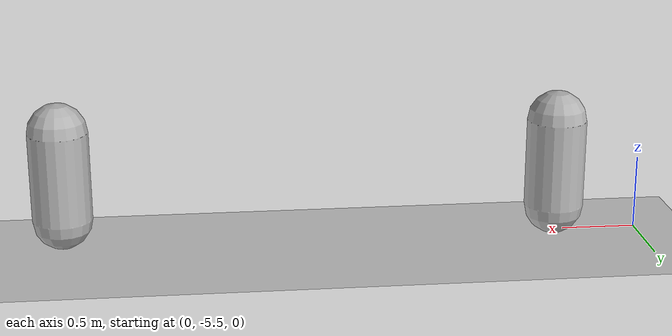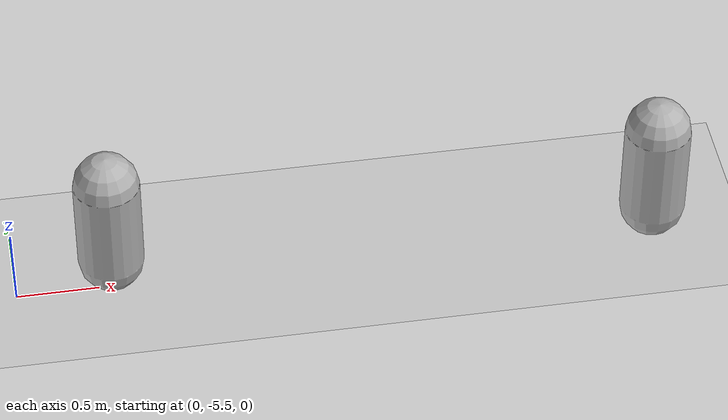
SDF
<sdf version="1.10">
 <world name="default">
  <include>
   <uri>https://fuel.gazebosim.org/1.0/OpenRobotics/models/Ground Plane</uri>
   <name>ground_plane</name>
  </include>
  <model name="capsule">
   <pose>0.58692861894000803 -5.4587143237482447 0.5 0 0 0</pose>
   <link name="capsule_link">
    <inertial>
     <inertia>
      <ixx>0.074153999999999998</ixx>
      <ixy>0</ixy>
      <ixz>0</ixz>
      <iyy>0.074153999999999998</iyy>
      <iyz>0</iyz>
      <izz>0.018769000000000001</izz>
     </inertia>
     <mass>1</mass>
    </inertial>
    <collision name="capsule_collision">
     <geometry>
      <capsule><radius>0.20000000000000001</radius><length>0.59999999999999998</length></capsule>
     </geometry>
    </collision>
    <visual name="capsule_visual">
     <geometry>
      <capsule><radius>0.20000000000000001</radius><length>0.59999999999999998</length></capsule>
     </geometry>
     <material>
      <ambient>0.300000012 0.300000012 0.300000012 1</ambient>
      <diffuse>0.699999988 0.699999988 0.699999988 1</diffuse>
      <specular>1 1 1 1</specular>
     </material>
    </visual>
   </link>
   <static>false</static>
  </model>
  <model name="capsule_0">
   <pose>3.9076713702795569 -5.5030724329415834 0.5 0 0 0</pose>
   <link name="capsule_link">
    <inertial>
     <inertia>
      <ixx>0.074153999999999998</ixx>
      <ixy>0</ixy>
      <ixz>0</ixz>
      <iyy>0.074153999999999998</iyy>
      <iyz>0</iyz>
      <izz>0.018769000000000001</izz>
     </inertia>
     <mass>1</mass>
    </inertial>
    <collision name="capsule_collision">
     <geometry>
      <capsule><radius>0.20000000000000001</radius><length>0.59999999999999998</length></capsule>
     </geometry>
    </collision>
    <visual name="capsule_visual">
     <geometry>
      <capsule><radius>0.20000000000000001</radius><length>0.59999999999999998</length></capsule>
     </geometry>
     <material>
      <ambient>0.300000012 0.300000012 0.300000012 1</ambient>
      <diffuse>0.699999988 0.699999988 0.699999988 1</diffuse>
      <specular>1 1 1 1</specular>
     </material>
    </visual>
   </link>
   <static>false</static>
  </model>
 </world>
</sdf>
